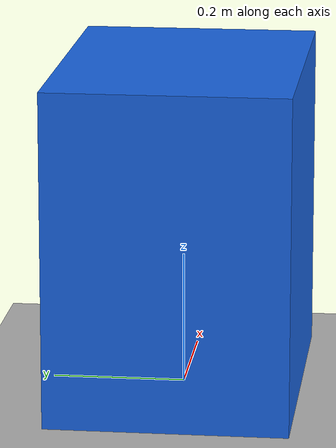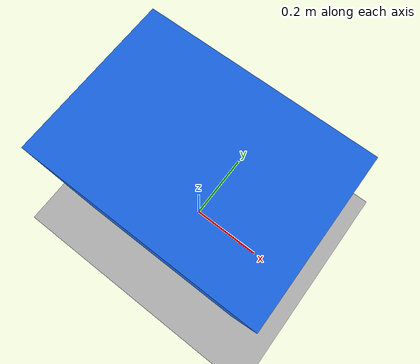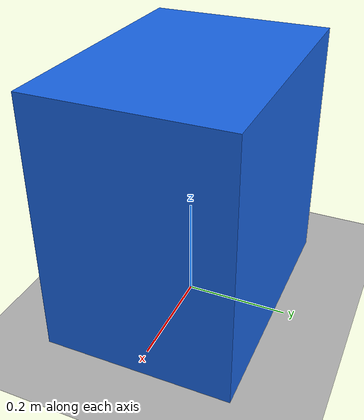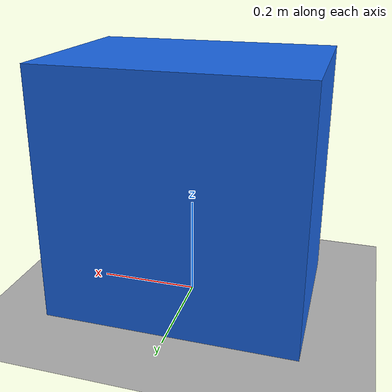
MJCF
<mujoco model="offscreen render">
  <visual><global offwidth="320" offheight="240"/></visual>
  <worldbody>
    <light pos="0 -2 3" dir="0 1 -1"/>
    <geom type="plane" size="2 2 .1" rgba=".7 .7 .7 1"/>
    <body pos="0 0 .25">
      <geom type="box" size=".25 .18 .25" rgba=".1 .4 .9 1"/>
    </body>
    <camera name="view" pos="1.5 -2 1.2" xyaxes=".8 .6 0 -.25 .33 .91" fovy="45"/>
  </worldbody>
</mujoco>
